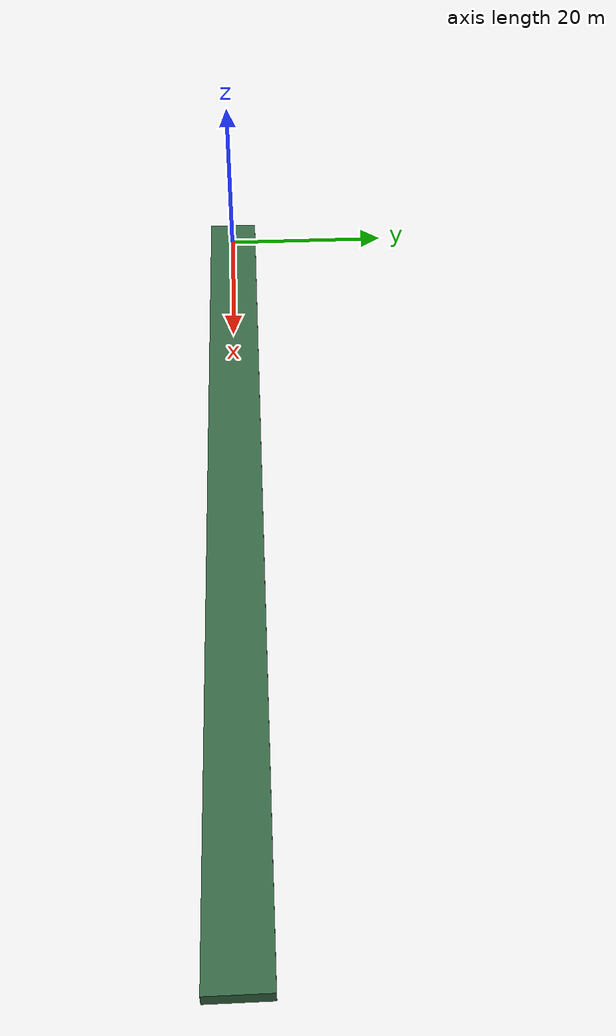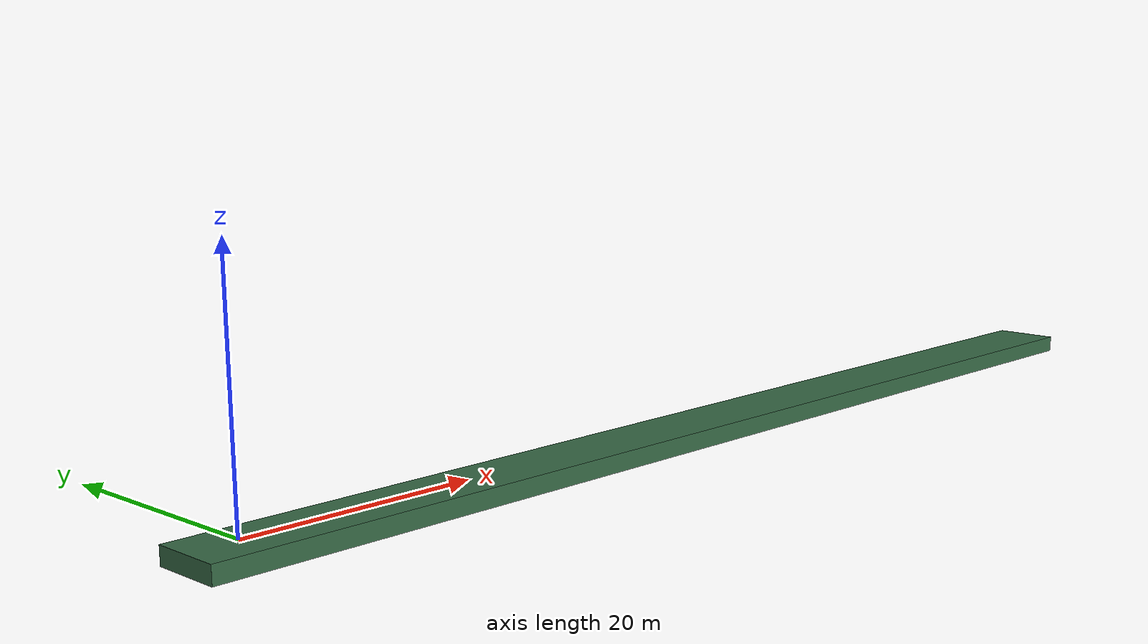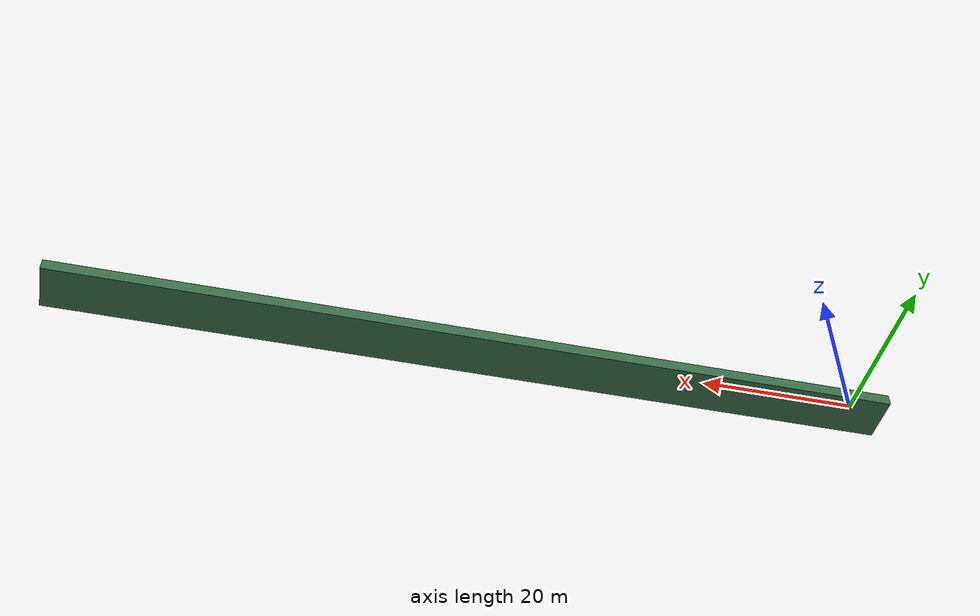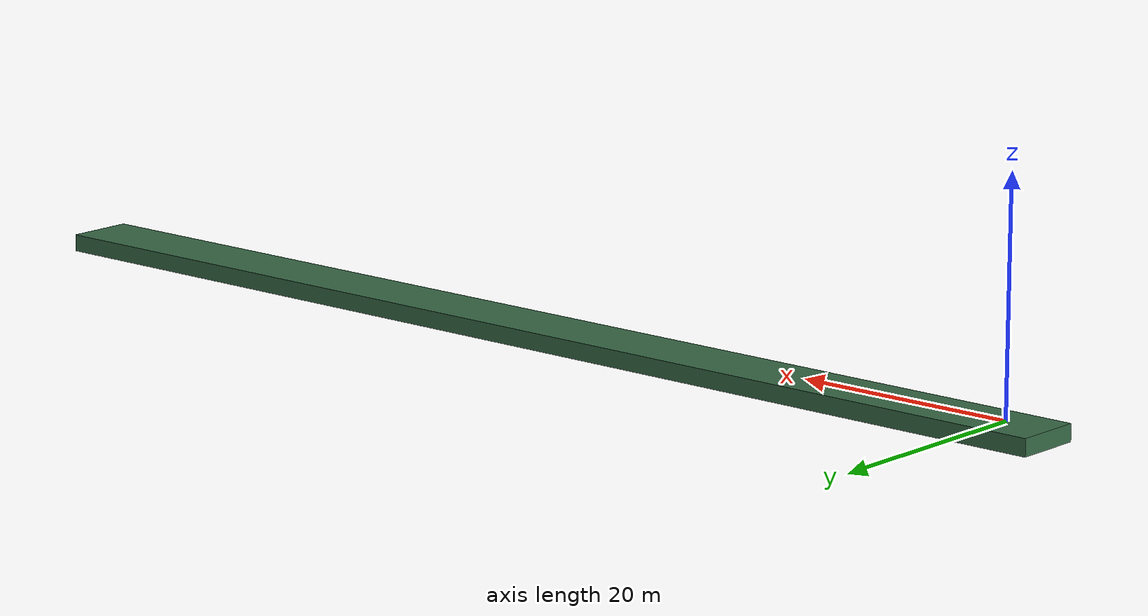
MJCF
<?xml version="1.0" encoding="utf-8"?>
<mujoco model="vrl camera-input flat test">
  <!-- Continuous ground: x=-4..102m; test course x=0..100m. -->
  <statistic center="3 0 0.4" extent="5"/>
  <visual><headlight diffuse="0.7 0.7 0.7" ambient="0.25 0.25 0.25"/>
    <global azimuth="-125" elevation="-22"/></visual>
  <default><default class="course"><geom type="box" friction="0.8 0.8 0.8" priority="2" contype="1" conaffinity="1"/></default></default>
  <worldbody>
    <light pos="3 0 8" dir="0 0 -1" directional="true"/>
    <geom name="flat_camera_test" class="course" type="box" pos="49 0 -0.75" size="53 3 0.75"
          friction="0.8 0.8 0.8" priority="2" contype="1" conaffinity="1"
          rgba="0.22 0.42 0.28 1"/>
  </worldbody>
  <contact>
    <pair geom1="RR" geom2="flat_camera_test"/><pair geom1="RL" geom2="flat_camera_test"/>
    <pair geom1="FR" geom2="flat_camera_test"/><pair geom1="FL" geom2="flat_camera_test"/>
  </contact>
</mujoco>
